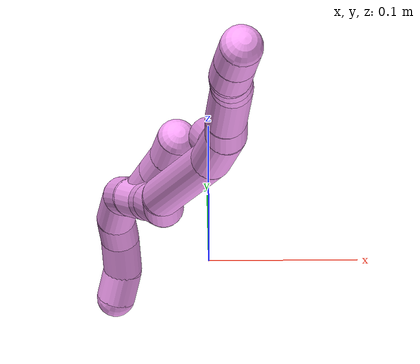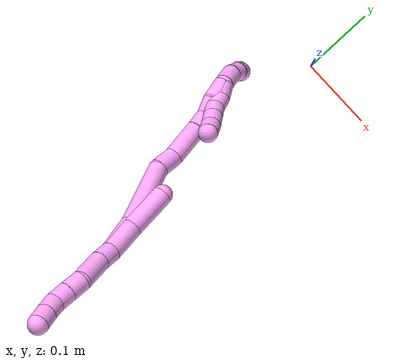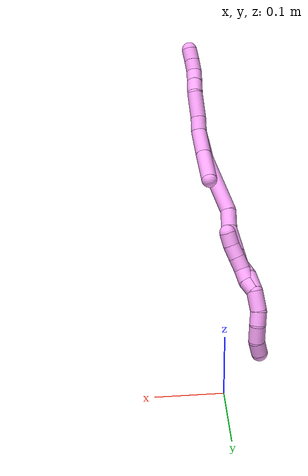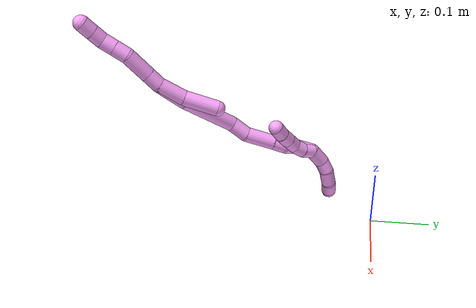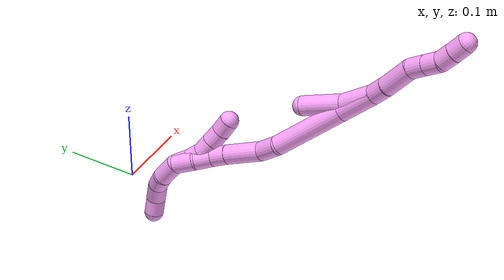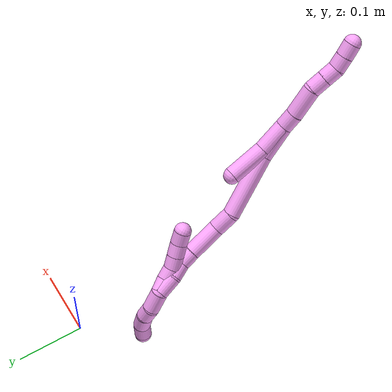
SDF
<sdf version="1.7">
 <world name="default">
  <model name="4">
   <static>0</static>
   <link name="4">
    <collision name="collision-cylinder-e_1_2_8">
     <pose>-0.001698 0.001047 0.011693 -0.089297 -0.143676 0.00643</pose>
     <geometry><cylinder><radius>0.0125</radius><length>0.023724</length></cylinder></geometry>
     <surface>
      <friction><ode><mu>1.16</mu><mu2>1.16</mu2><slip1>0</slip1><slip2>0</slip2></ode></friction>
      <contact><ode><kp>1e+06</kp><kd>1</kd><max_vel>0</max_vel><min_depth>0.001</min_depth></ode></contact>
     </surface>
    </collision>
    <visual name="visual-cylinder-e_1_2_8">
     <pose>-0.001698 0.001047 0.011693 -0.089297 -0.143676 0.00643</pose>
     <geometry><cylinder><radius>0.0125</radius><length>0.023724</length></cylinder></geometry>
     <material><ambient>1 0.65098 0.996078 1</ambient></material>
    </visual>
    <collision name="collision-cylinder-e_2_8_9">
     <pose>-0.004299 0.004067 0.044768 -0.092031 -0.042004 0.001934</pose>
     <geometry><cylinder><radius>0.0125</radius><length>0.042984</length></cylinder></geometry>
     <surface>
      <friction><ode><mu>1.16</mu><mu2>1.16</mu2><slip1>0</slip1><slip2>0</slip2></ode></friction>
      <contact><ode><kp>1e+06</kp><kd>1</kd><max_vel>0</max_vel><min_depth>0.001</min_depth></ode></contact>
     </surface>
    </collision>
    <visual name="visual-cylinder-e_2_8_9">
     <pose>-0.004299 0.004067 0.044768 -0.092031 -0.042004 0.001934</pose>
     <geometry><cylinder><radius>0.0125</radius><length>0.042984</length></cylinder></geometry>
     <material><ambient>1 0.65098 0.996078 1</ambient></material>
    </visual>
    <collision name="collision-cylinder-e_3_9_10">
     <pose>-0.008385 0.004676 0.076805 0.127356 -0.288066 -0.018496</pose>
     <geometry><cylinder><radius>0.0125</radius><length>0.022407</length></cylinder></geometry>
     <surface>
      <friction><ode><mu>1.16</mu><mu2>1.16</mu2><slip1>0</slip1><slip2>0</slip2></ode></friction>
      <contact><ode><kp>1e+06</kp><kd>1</kd><max_vel>0</max_vel><min_depth>0.001</min_depth></ode></contact>
     </surface>
    </collision>
    <visual name="visual-cylinder-e_3_9_10">
     <pose>-0.008385 0.004676 0.076805 0.127356 -0.288066 -0.018496</pose>
     <geometry><cylinder><radius>0.0125</radius><length>0.022407</length></cylinder></geometry>
     <material><ambient>1 0.65098 0.996078 1</ambient></material>
    </visual>
    <collision name="collision-cylinder-e_4_10_11">
     <pose>-0.014545 0.001975 0.097346 0.134415 -0.290054 -0.019661</pose>
     <geometry><cylinder><radius>0.0125</radius><length>0.020822</length></cylinder></geometry>
     <surface>
      <friction><ode><mu>1.16</mu><mu2>1.16</mu2><slip1>0</slip1><slip2>0</slip2></ode></friction>
      <contact><ode><kp>1e+06</kp><kd>1</kd><max_vel>0</max_vel><min_depth>0.001</min_depth></ode></contact>
     </surface>
    </collision>
    <visual name="visual-cylinder-e_4_10_11">
     <pose>-0.014545 0.001975 0.097346 0.134415 -0.290054 -0.019661</pose>
     <geometry><cylinder><radius>0.0125</radius><length>0.020822</length></cylinder></geometry>
     <material><ambient>1 0.65098 0.996078 1</ambient></material>
    </visual>
    <collision name="collision-cylinder-e_5_11_12">
     <pose>-0.017587 0.00105 0.117244 -0.04112 -0.006419 0.000132</pose>
     <geometry><cylinder><radius>0.0125</radius><length>0.020042</length></cylinder></geometry>
     <surface>
      <friction><ode><mu>1.16</mu><mu2>1.16</mu2><slip1>0</slip1><slip2>0</slip2></ode></friction>
      <contact><ode><kp>1e+06</kp><kd>1</kd><max_vel>0</max_vel><min_depth>0.001</min_depth></ode></contact>
     </surface>
    </collision>
    <visual name="visual-cylinder-e_5_11_12">
     <pose>-0.017587 0.00105 0.117244 -0.04112 -0.006419 0.000132</pose>
     <geometry><cylinder><radius>0.0125</radius><length>0.020042</length></cylinder></geometry>
     <material><ambient>1 0.65098 0.996078 1</ambient></material>
    </visual>
    <collision name="collision-cylinder-e_6_12_6">
     <pose>-0.017338 0.001938 0.137251 -0.047574 0.031334 -0.000746</pose>
     <geometry><cylinder><radius>0.0125</radius><length>0.020021</length></cylinder></geometry>
     <surface>
      <friction><ode><mu>1.16</mu><mu2>1.16</mu2><slip1>0</slip1><slip2>0</slip2></ode></friction>
      <contact><ode><kp>1e+06</kp><kd>1</kd><max_vel>0</max_vel><min_depth>0.001</min_depth></ode></contact>
     </surface>
    </collision>
    <visual name="visual-cylinder-e_6_12_6">
     <pose>-0.017338 0.001938 0.137251 -0.047574 0.031334 -0.000746</pose>
     <geometry><cylinder><radius>0.0125</radius><length>0.020021</length></cylinder></geometry>
     <material><ambient>1 0.65098 0.996078 1</ambient></material>
    </visual>
    <collision name="collision-cylinder-e_1_2_13">
     <pose>0.003449 0.003808 -0.021308 -2.96474 0.158018 -1.45789</pose>
     <geometry><cylinder><radius>0.0125</radius><length>0.043836</length></cylinder></geometry>
     <surface>
      <friction><ode><mu>1.16</mu><mu2>1.16</mu2><slip1>0</slip1><slip2>0</slip2></ode></friction>
      <contact><ode><kp>1e+06</kp><kd>1</kd><max_vel>0</max_vel><min_depth>0.001</min_depth></ode></contact>
     </surface>
    </collision>
    <visual name="visual-cylinder-e_1_2_13">
     <pose>0.003449 0.003808 -0.021308 -2.96474 0.158018 -1.45789</pose>
     <geometry><cylinder><radius>0.0125</radius><length>0.043836</length></cylinder></geometry>
     <material><ambient>1 0.65098 0.996078 1</ambient></material>
    </visual>
    <collision name="collision-cylinder-e_2_13_5">
     <pose>0.014555 0.017877 -0.067609 -2.75205 0.276145 -1.22734</pose>
     <geometry><cylinder><radius>0.0125</radius><length>0.056164</length></cylinder></geometry>
     <surface>
      <friction><ode><mu>1.16</mu><mu2>1.16</mu2><slip1>0</slip1><slip2>0</slip2></ode></friction>
      <contact><ode><kp>1e+06</kp><kd>1</kd><max_vel>0</max_vel><min_depth>0.001</min_depth></ode></contact>
     </surface>
    </collision>
    <visual name="visual-cylinder-e_2_13_5">
     <pose>0.014555 0.017877 -0.067609 -2.75205 0.276145 -1.22734</pose>
     <geometry><cylinder><radius>0.0125</radius><length>0.056164</length></cylinder></geometry>
     <material><ambient>1 0.65098 0.996078 1</ambient></material>
    </visual>
    <collision name="collision-cylinder-e_1_2_14">
     <pose>0.000791 0.00196 -0.025116 -3.06372 0.031371 -0.76565</pose>
     <geometry><cylinder><radius>0.0125</radius><length>0.05041</length></cylinder></geometry>
     <surface>
      <friction><ode><mu>1.16</mu><mu2>1.16</mu2><slip1>0</slip1><slip2>0</slip2></ode></friction>
      <contact><ode><kp>1e+06</kp><kd>1</kd><max_vel>0</max_vel><min_depth>0.001</min_depth></ode></contact>
     </surface>
    </collision>
    <visual name="visual-cylinder-e_1_2_14">
     <pose>0.000791 0.00196 -0.025116 -3.06372 0.031371 -0.76565</pose>
     <geometry><cylinder><radius>0.0125</radius><length>0.05041</length></cylinder></geometry>
     <material><ambient>1 0.65098 0.996078 1</ambient></material>
    </visual>
    <collision name="collision-cylinder-e_2_14_15">
     <pose>-0.002221 0.012434 -0.096997 -2.96149 -0.079825 0.832777</pose>
     <geometry><cylinder><radius>0.0125</radius><length>0.095371</length></cylinder></geometry>
     <surface>
      <friction><ode><mu>1.16</mu><mu2>1.16</mu2><slip1>0</slip1><slip2>0</slip2></ode></friction>
      <contact><ode><kp>1e+06</kp><kd>1</kd><max_vel>0</max_vel><min_depth>0.001</min_depth></ode></contact>
     </surface>
    </collision>
    <visual name="visual-cylinder-e_2_14_15">
     <pose>-0.002221 0.012434 -0.096997 -2.96149 -0.079825 0.832777</pose>
     <geometry><cylinder><radius>0.0125</radius><length>0.095371</length></cylinder></geometry>
     <material><ambient>1 0.65098 0.996078 1</ambient></material>
    </visual>
    <collision name="collision-cylinder-e_3_15_16">
     <pose>-0.002489 0.021437 -0.158601 -3.10875 0.233729 -2.86366</pose>
     <geometry><cylinder><radius>0.0125</radius><length>0.030525</length></cylinder></geometry>
     <surface>
      <friction><ode><mu>1.16</mu><mu2>1.16</mu2><slip1>0</slip1><slip2>0</slip2></ode></friction>
      <contact><ode><kp>1e+06</kp><kd>1</kd><max_vel>0</max_vel><min_depth>0.001</min_depth></ode></contact>
     </surface>
    </collision>
    <visual name="visual-cylinder-e_3_15_16">
     <pose>-0.002489 0.021437 -0.158601 -3.10875 0.233729 -2.86366</pose>
     <geometry><cylinder><radius>0.0125</radius><length>0.030525</length></cylinder></geometry>
     <material><ambient>1 0.65098 0.996078 1</ambient></material>
    </visual>
    <collision name="collision-cylinder-e_4_16_17">
     <pose>0.006106 0.030911 -0.195718 -2.75815 0.207587 -0.985088</pose>
     <geometry><cylinder><radius>0.0125</radius><length>0.049098</length></cylinder></geometry>
     <surface>
      <friction><ode><mu>1.16</mu><mu2>1.16</mu2><slip1>0</slip1><slip2>0</slip2></ode></friction>
      <contact><ode><kp>1e+06</kp><kd>1</kd><max_vel>0</max_vel><min_depth>0.001</min_depth></ode></contact>
     </surface>
    </collision>
    <visual name="visual-cylinder-e_4_16_17">
     <pose>0.006106 0.030911 -0.195718 -2.75815 0.207587 -0.985088</pose>
     <geometry><cylinder><radius>0.0125</radius><length>0.049098</length></cylinder></geometry>
     <material><ambient>1 0.65098 0.996078 1</ambient></material>
    </visual>
    <collision name="collision-cylinder-e_5_17_18">
     <pose>0.013099 0.043536 -0.228325 -2.80292 0.174814 -0.947255</pose>
     <geometry><cylinder><radius>0.0125</radius><length>0.022241</length></cylinder></geometry>
     <surface>
      <friction><ode><mu>1.16</mu><mu2>1.16</mu2><slip1>0</slip1><slip2>0</slip2></ode></friction>
      <contact><ode><kp>1e+06</kp><kd>1</kd><max_vel>0</max_vel><min_depth>0.001</min_depth></ode></contact>
     </surface>
    </collision>
    <visual name="visual-cylinder-e_5_17_18">
     <pose>0.013099 0.043536 -0.228325 -2.80292 0.174814 -0.947255</pose>
     <geometry><cylinder><radius>0.0125</radius><length>0.022241</length></cylinder></geometry>
     <material><ambient>1 0.65098 0.996078 1</ambient></material>
    </visual>
    <collision name="collision-cylinder-e_6_18_19">
     <pose>0.014482 0.053188 -0.248637 -2.59944 -0.047265 0.169689</pose>
     <geometry><cylinder><radius>0.0125</radius><length>0.023336</length></cylinder></geometry>
     <surface>
      <friction><ode><mu>1.16</mu><mu2>1.16</mu2><slip1>0</slip1><slip2>0</slip2></ode></friction>
      <contact><ode><kp>1e+06</kp><kd>1</kd><max_vel>0</max_vel><min_depth>0.001</min_depth></ode></contact>
     </surface>
    </collision>
    <visual name="visual-cylinder-e_6_18_19">
     <pose>0.014482 0.053188 -0.248637 -2.59944 -0.047265 0.169689</pose>
     <geometry><cylinder><radius>0.0125</radius><length>0.023336</length></cylinder></geometry>
     <material><ambient>1 0.65098 0.996078 1</ambient></material>
    </visual>
    <collision name="collision-cylinder-e_7_19_1">
     <pose>0.015682 0.064519 -0.272007 -2.76355 0.121022 -0.613397</pose>
     <geometry><cylinder><radius>0.0125</radius><length>0.02902</length></cylinder></geometry>
     <surface>
      <friction><ode><mu>1.16</mu><mu2>1.16</mu2><slip1>0</slip1><slip2>0</slip2></ode></friction>
      <contact><ode><kp>1e+06</kp><kd>1</kd><max_vel>0</max_vel><min_depth>0.001</min_depth></ode></contact>
     </surface>
    </collision>
    <visual name="visual-cylinder-e_7_19_1">
     <pose>0.015682 0.064519 -0.272007 -2.76355 0.121022 -0.613397</pose>
     <geometry><cylinder><radius>0.0125</radius><length>0.02902</length></cylinder></geometry>
     <material><ambient>1 0.65098 0.996078 1</ambient></material>
    </visual>
    <collision name="collision-cylinder-e_1_1_20">
     <pose>0.016539 0.067956 -0.300688 3.01934 -0.058014 -0.885389</pose>
     <geometry><cylinder><radius>0.0125</radius><length>0.030869</length></cylinder></geometry>
     <surface>
      <friction><ode><mu>1.16</mu><mu2>1.16</mu2><slip1>0</slip1><slip2>0</slip2></ode></friction>
      <contact><ode><kp>1e+06</kp><kd>1</kd><max_vel>0</max_vel><min_depth>0.001</min_depth></ode></contact>
     </surface>
    </collision>
    <visual name="visual-cylinder-e_1_1_20">
     <pose>0.016539 0.067956 -0.300688 3.01934 -0.058014 -0.885389</pose>
     <geometry><cylinder><radius>0.0125</radius><length>0.030869</length></cylinder></geometry>
     <material><ambient>1 0.65098 0.996078 1</ambient></material>
    </visual>
    <collision name="collision-cylinder-e_2_20_21">
     <pose>0.01662 0.062188 -0.325687 2.76046 0.093025 0.473523</pose>
     <geometry><cylinder><radius>0.0125</radius><length>0.021003</length></cylinder></geometry>
     <surface>
      <friction><ode><mu>1.16</mu><mu2>1.16</mu2><slip1>0</slip1><slip2>0</slip2></ode></friction>
      <contact><ode><kp>1e+06</kp><kd>1</kd><max_vel>0</max_vel><min_depth>0.001</min_depth></ode></contact>
     </surface>
    </collision>
    <visual name="visual-cylinder-e_2_20_21">
     <pose>0.01662 0.062188 -0.325687 2.76046 0.093025 0.473523</pose>
     <geometry><cylinder><radius>0.0125</radius><length>0.021003</length></cylinder></geometry>
     <material><ambient>1 0.65098 0.996078 1</ambient></material>
    </visual>
    <collision name="collision-cylinder-e_3_21_22">
     <pose>0.016471 0.051131 -0.346262 2.55862 -0.086183 -0.285469</pose>
     <geometry><cylinder><radius>0.0125</radius><length>0.026135</length></cylinder></geometry>
     <surface>
      <friction><ode><mu>1.16</mu><mu2>1.16</mu2><slip1>0</slip1><slip2>0</slip2></ode></friction>
      <contact><ode><kp>1e+06</kp><kd>1</kd><max_vel>0</max_vel><min_depth>0.001</min_depth></ode></contact>
     </surface>
    </collision>
    <visual name="visual-cylinder-e_3_21_22">
     <pose>0.016471 0.051131 -0.346262 2.55862 -0.086183 -0.285469</pose>
     <geometry><cylinder><radius>0.0125</radius><length>0.026135</length></cylinder></geometry>
     <material><ambient>1 0.65098 0.996078 1</ambient></material>
    </visual>
    <collision name="collision-cylinder-e_4_22_4">
     <pose>0.011018 0.038483 -0.365624 2.56854 -0.404539 -1.21611</pose>
     <geometry><cylinder><radius>0.0125</radius><length>0.021993</length></cylinder></geometry>
     <surface>
      <friction><ode><mu>1.16</mu><mu2>1.16</mu2><slip1>0</slip1><slip2>0</slip2></ode></friction>
      <contact><ode><kp>1e+06</kp><kd>1</kd><max_vel>0</max_vel><min_depth>0.001</min_depth></ode></contact>
     </surface>
    </collision>
    <visual name="visual-cylinder-e_4_22_4">
     <pose>0.011018 0.038483 -0.365624 2.56854 -0.404539 -1.21611</pose>
     <geometry><cylinder><radius>0.0125</radius><length>0.021993</length></cylinder></geometry>
     <material><ambient>1 0.65098 0.996078 1</ambient></material>
    </visual>
    <collision name="collision-cylinder-e_1_1_23">
     <pose>0.019137 0.065311 -0.27664 0.476985 0.171163 0.041709</pose>
     <geometry><cylinder><radius>0.0125</radius><length>0.02</length></cylinder></geometry>
     <surface>
      <friction><ode><mu>1.16</mu><mu2>1.16</mu2><slip1>0</slip1><slip2>0</slip2></ode></friction>
      <contact><ode><kp>1e+06</kp><kd>1</kd><max_vel>0</max_vel><min_depth>0.001</min_depth></ode></contact>
     </surface>
    </collision>
    <visual name="visual-cylinder-e_1_1_23">
     <pose>0.019137 0.065311 -0.27664 0.476985 0.171163 0.041709</pose>
     <geometry><cylinder><radius>0.0125</radius><length>0.02</length></cylinder></geometry>
     <material><ambient>1 0.65098 0.996078 1</ambient></material>
    </visual>
    <collision name="collision-cylinder-e_2_23_24">
     <pose>0.021338 0.059294 -0.258011 0.15011 0.049715 0.003739</pose>
     <geometry><cylinder><radius>0.0125</radius><length>0.02</length></cylinder></geometry>
     <surface>
      <friction><ode><mu>1.16</mu><mu2>1.16</mu2><slip1>0</slip1><slip2>0</slip2></ode></friction>
      <contact><ode><kp>1e+06</kp><kd>1</kd><max_vel>0</max_vel><min_depth>0.001</min_depth></ode></contact>
     </surface>
    </collision>
    <visual name="visual-cylinder-e_2_23_24">
     <pose>0.021338 0.059294 -0.258011 0.15011 0.049715 0.003739</pose>
     <geometry><cylinder><radius>0.0125</radius><length>0.02</length></cylinder></geometry>
     <material><ambient>1 0.65098 0.996078 1</ambient></material>
    </visual>
    <collision name="collision-cylinder-e_3_24_25">
     <pose>0.024543 0.058141 -0.238515 -0.035384 0.27424 -0.004883</pose>
     <geometry><cylinder><radius>0.0125</radius><length>0.02</length></cylinder></geometry>
     <surface>
      <friction><ode><mu>1.16</mu><mu2>1.16</mu2><slip1>0</slip1><slip2>0</slip2></ode></friction>
      <contact><ode><kp>1e+06</kp><kd>1</kd><max_vel>0</max_vel><min_depth>0.001</min_depth></ode></contact>
     </surface>
    </collision>
    <visual name="visual-cylinder-e_3_24_25">
     <pose>0.024543 0.058141 -0.238515 -0.035384 0.27424 -0.004883</pose>
     <geometry><cylinder><radius>0.0125</radius><length>0.02</length></cylinder></geometry>
     <material><ambient>1 0.65098 0.996078 1</ambient></material>
    </visual>
    <collision name="collision-cylinder-e_4_25_26">
     <pose>0.029962 0.058819 -0.219275 -0.035105 0.274487 -0.004849</pose>
     <geometry><cylinder><radius>0.0125</radius><length>0.02</length></cylinder></geometry>
     <surface>
      <friction><ode><mu>1.16</mu><mu2>1.16</mu2><slip1>0</slip1><slip2>0</slip2></ode></friction>
      <contact><ode><kp>1e+06</kp><kd>1</kd><max_vel>0</max_vel><min_depth>0.001</min_depth></ode></contact>
     </surface>
    </collision>
    <visual name="visual-cylinder-e_4_25_26">
     <pose>0.029962 0.058819 -0.219275 -0.035105 0.274487 -0.004849</pose>
     <geometry><cylinder><radius>0.0125</radius><length>0.02</length></cylinder></geometry>
     <material><ambient>1 0.65098 0.996078 1</ambient></material>
    </visual>
    <collision name="collision-cylinder-e_5_26_3">
     <pose>0.034744 0.060816 -0.200014 -0.170403 0.208725 -0.017891</pose>
     <geometry><cylinder><radius>0.0125</radius><length>0.02</length></cylinder></geometry>
     <surface>
      <friction><ode><mu>1.16</mu><mu2>1.16</mu2><slip1>0</slip1><slip2>0</slip2></ode></friction>
      <contact><ode><kp>1e+06</kp><kd>1</kd><max_vel>0</max_vel><min_depth>0.001</min_depth></ode></contact>
     </surface>
    </collision>
    <visual name="visual-cylinder-e_5_26_3">
     <pose>0.034744 0.060816 -0.200014 -0.170403 0.208725 -0.017891</pose>
     <geometry><cylinder><radius>0.0125</radius><length>0.02</length></cylinder></geometry>
     <material><ambient>1 0.65098 0.996078 1</ambient></material>
    </visual>
    <collision name="collision-sphere-3">
     <pose>0.036816 0.062475 -0.190373 0 -0 0</pose>
     <geometry><sphere><radius>0.0125</radius></sphere></geometry>
     <surface>
      <friction><ode><mu>1.16</mu><mu2>1.16</mu2><slip1>0</slip1><slip2>0</slip2></ode></friction>
      <contact><ode><kp>1e+06</kp><kd>1</kd><max_vel>0</max_vel><min_depth>0.001</min_depth></ode></contact>
     </surface>
    </collision>
    <visual name="visual-sphere-3">
     <pose>0.036816 0.062475 -0.190373 0 -0 0</pose>
     <geometry><sphere><radius>0.0125</radius></sphere></geometry>
     <material><ambient>1 0.65098 0.996078 1</ambient></material>
    </visual>
    <collision name="collision-sphere-26">
     <pose>0.032672 0.059157 -0.209655 0 -0 0</pose>
     <geometry><sphere><radius>0.0125</radius></sphere></geometry>
     <surface>
      <friction><ode><mu>1.16</mu><mu2>1.16</mu2><slip1>0</slip1><slip2>0</slip2></ode></friction>
      <contact><ode><kp>1e+06</kp><kd>1</kd><max_vel>0</max_vel><min_depth>0.001</min_depth></ode></contact>
     </surface>
    </collision>
    <visual name="visual-sphere-26">
     <pose>0.032672 0.059157 -0.209655 0 -0 0</pose>
     <geometry><sphere><radius>0.0125</radius></sphere></geometry>
     <material><ambient>1 0.65098 0.996078 1</ambient></material>
    </visual>
    <collision name="collision-sphere-25">
     <pose>0.027251 0.058481 -0.228895 0 -0 0</pose>
     <geometry><sphere><radius>0.0125</radius></sphere></geometry>
     <surface>
      <friction><ode><mu>1.16</mu><mu2>1.16</mu2><slip1>0</slip1><slip2>0</slip2></ode></friction>
      <contact><ode><kp>1e+06</kp><kd>1</kd><max_vel>0</max_vel><min_depth>0.001</min_depth></ode></contact>
     </surface>
    </collision>
    <visual name="visual-sphere-25">
     <pose>0.027251 0.058481 -0.228895 0 -0 0</pose>
     <geometry><sphere><radius>0.0125</radius></sphere></geometry>
     <material><ambient>1 0.65098 0.996078 1</ambient></material>
    </visual>
    <collision name="collision-sphere-24">
     <pose>0.021835 0.0578 -0.248135 0 -0 0</pose>
     <geometry><sphere><radius>0.0125</radius></sphere></geometry>
     <surface>
      <friction><ode><mu>1.16</mu><mu2>1.16</mu2><slip1>0</slip1><slip2>0</slip2></ode></friction>
      <contact><ode><kp>1e+06</kp><kd>1</kd><max_vel>0</max_vel><min_depth>0.001</min_depth></ode></contact>
     </surface>
    </collision>
    <visual name="visual-sphere-24">
     <pose>0.021835 0.0578 -0.248135 0 -0 0</pose>
     <geometry><sphere><radius>0.0125</radius></sphere></geometry>
     <material><ambient>1 0.65098 0.996078 1</ambient></material>
    </visual>
    <collision name="collision-sphere-23">
     <pose>0.020841 0.060787 -0.267886 0 -0 0</pose>
     <geometry><sphere><radius>0.0125</radius></sphere></geometry>
     <surface>
      <friction><ode><mu>1.16</mu><mu2>1.16</mu2><slip1>0</slip1><slip2>0</slip2></ode></friction>
      <contact><ode><kp>1e+06</kp><kd>1</kd><max_vel>0</max_vel><min_depth>0.001</min_depth></ode></contact>
     </surface>
    </collision>
    <visual name="visual-sphere-23">
     <pose>0.020841 0.060787 -0.267886 0 -0 0</pose>
     <geometry><sphere><radius>0.0125</radius></sphere></geometry>
     <material><ambient>1 0.65098 0.996078 1</ambient></material>
    </visual>
    <collision name="collision-sphere-4">
     <pose>0.006689 0.033002 -0.374118 0 -0 0</pose>
     <geometry><sphere><radius>0.0125</radius></sphere></geometry>
     <surface>
      <friction><ode><mu>1.16</mu><mu2>1.16</mu2><slip1>0</slip1><slip2>0</slip2></ode></friction>
      <contact><ode><kp>1e+06</kp><kd>1</kd><max_vel>0</max_vel><min_depth>0.001</min_depth></ode></contact>
     </surface>
    </collision>
    <visual name="visual-sphere-4">
     <pose>0.006689 0.033002 -0.374118 0 -0 0</pose>
     <geometry><sphere><radius>0.0125</radius></sphere></geometry>
     <material><ambient>1 0.65098 0.996078 1</ambient></material>
    </visual>
    <collision name="collision-sphere-22">
     <pose>0.015346 0.043964 -0.35713 0 -0 0</pose>
     <geometry><sphere><radius>0.0125</radius></sphere></geometry>
     <surface>
      <friction><ode><mu>1.16</mu><mu2>1.16</mu2><slip1>0</slip1><slip2>0</slip2></ode></friction>
      <contact><ode><kp>1e+06</kp><kd>1</kd><max_vel>0</max_vel><min_depth>0.001</min_depth></ode></contact>
     </surface>
    </collision>
    <visual name="visual-sphere-22">
     <pose>0.015346 0.043964 -0.35713 0 -0 0</pose>
     <geometry><sphere><radius>0.0125</radius></sphere></geometry>
     <material><ambient>1 0.65098 0.996078 1</ambient></material>
    </visual>
    <collision name="collision-sphere-21">
     <pose>0.017595 0.058298 -0.335393 0 -0 0</pose>
     <geometry><sphere><radius>0.0125</radius></sphere></geometry>
     <surface>
      <friction><ode><mu>1.16</mu><mu2>1.16</mu2><slip1>0</slip1><slip2>0</slip2></ode></friction>
      <contact><ode><kp>1e+06</kp><kd>1</kd><max_vel>0</max_vel><min_depth>0.001</min_depth></ode></contact>
     </surface>
    </collision>
    <visual name="visual-sphere-21">
     <pose>0.017595 0.058298 -0.335393 0 -0 0</pose>
     <geometry><sphere><radius>0.0125</radius></sphere></geometry>
     <material><ambient>1 0.65098 0.996078 1</ambient></material>
    </visual>
    <collision name="collision-sphere-20">
     <pose>0.015644 0.066077 -0.315981 0 -0 0</pose>
     <geometry><sphere><radius>0.0125</radius></sphere></geometry>
     <surface>
      <friction><ode><mu>1.16</mu><mu2>1.16</mu2><slip1>0</slip1><slip2>0</slip2></ode></friction>
      <contact><ode><kp>1e+06</kp><kd>1</kd><max_vel>0</max_vel><min_depth>0.001</min_depth></ode></contact>
     </surface>
    </collision>
    <visual name="visual-sphere-20">
     <pose>0.015644 0.066077 -0.315981 0 -0 0</pose>
     <geometry><sphere><radius>0.0125</radius></sphere></geometry>
     <material><ambient>1 0.65098 0.996078 1</ambient></material>
    </visual>
    <collision name="collision-sphere-12">
     <pose>-0.017651 0.001462 0.127257 0 -0 0</pose>
     <geometry><sphere><radius>0.0125</radius></sphere></geometry>
     <surface>
      <friction><ode><mu>1.16</mu><mu2>1.16</mu2><slip1>0</slip1><slip2>0</slip2></ode></friction>
      <contact><ode><kp>1e+06</kp><kd>1</kd><max_vel>0</max_vel><min_depth>0.001</min_depth></ode></contact>
     </surface>
    </collision>
    <visual name="visual-sphere-12">
     <pose>-0.017651 0.001462 0.127257 0 -0 0</pose>
     <geometry><sphere><radius>0.0125</radius></sphere></geometry>
     <material><ambient>1 0.65098 0.996078 1</ambient></material>
    </visual>
    <collision name="collision-sphere-11">
     <pose>-0.017523 0.000638 0.107232 0 -0 0</pose>
     <geometry><sphere><radius>0.0125</radius></sphere></geometry>
     <surface>
      <friction><ode><mu>1.16</mu><mu2>1.16</mu2><slip1>0</slip1><slip2>0</slip2></ode></friction>
      <contact><ode><kp>1e+06</kp><kd>1</kd><max_vel>0</max_vel><min_depth>0.001</min_depth></ode></contact>
     </surface>
    </collision>
    <visual name="visual-sphere-11">
     <pose>-0.017523 0.000638 0.107232 0 -0 0</pose>
     <geometry><sphere><radius>0.0125</radius></sphere></geometry>
     <material><ambient>1 0.65098 0.996078 1</ambient></material>
    </visual>
    <collision name="collision-sphere-10">
     <pose>-0.011568 0.003312 0.08746 0 -0 0</pose>
     <geometry><sphere><radius>0.0125</radius></sphere></geometry>
     <surface>
      <friction><ode><mu>1.16</mu><mu2>1.16</mu2><slip1>0</slip1><slip2>0</slip2></ode></friction>
      <contact><ode><kp>1e+06</kp><kd>1</kd><max_vel>0</max_vel><min_depth>0.001</min_depth></ode></contact>
     </surface>
    </collision>
    <visual name="visual-sphere-10">
     <pose>-0.011568 0.003312 0.08746 0 -0 0</pose>
     <geometry><sphere><radius>0.0125</radius></sphere></geometry>
     <material><ambient>1 0.65098 0.996078 1</ambient></material>
    </visual>
    <collision name="collision-sphere-9">
     <pose>-0.005202 0.006041 0.06615 0 -0 0</pose>
     <geometry><sphere><radius>0.0125</radius></sphere></geometry>
     <surface>
      <friction><ode><mu>1.16</mu><mu2>1.16</mu2><slip1>0</slip1><slip2>0</slip2></ode></friction>
      <contact><ode><kp>1e+06</kp><kd>1</kd><max_vel>0</max_vel><min_depth>0.001</min_depth></ode></contact>
     </surface>
    </collision>
    <visual name="visual-sphere-9">
     <pose>-0.005202 0.006041 0.06615 0 -0 0</pose>
     <geometry><sphere><radius>0.0125</radius></sphere></geometry>
     <material><ambient>1 0.65098 0.996078 1</ambient></material>
    </visual>
    <collision name="collision-sphere-2">
     <geometry><sphere><radius>0.0125</radius></sphere></geometry>
     <surface>
      <friction><ode><mu>1.16</mu><mu2>1.16</mu2><slip1>0</slip1><slip2>0</slip2></ode></friction>
      <contact><ode><kp>1e+06</kp><kd>1</kd><max_vel>0</max_vel><min_depth>0.001</min_depth></ode></contact>
     </surface>
    </collision>
    <visual name="visual-sphere-2">
     <geometry><sphere><radius>0.0125</radius></sphere></geometry>
     <material><ambient>1 0.65098 0.996078 1</ambient></material>
    </visual>
    <collision name="collision-sphere-19">
     <pose>0.013931 0.059202 -0.25862 0 -0 0</pose>
     <geometry><sphere><radius>0.0125</radius></sphere></geometry>
     <surface>
      <friction><ode><mu>1.16</mu><mu2>1.16</mu2><slip1>0</slip1><slip2>0</slip2></ode></friction>
      <contact><ode><kp>1e+06</kp><kd>1</kd><max_vel>0</max_vel><min_depth>0.001</min_depth></ode></contact>
     </surface>
    </collision>
    <visual name="visual-sphere-19">
     <pose>0.013931 0.059202 -0.25862 0 -0 0</pose>
     <geometry><sphere><radius>0.0125</radius></sphere></geometry>
     <material><ambient>1 0.65098 0.996078 1</ambient></material>
    </visual>
    <collision name="collision-sphere-8">
     <pose>-0.003397 0.002094 0.023386 0 -0 0</pose>
     <geometry><sphere><radius>0.0125</radius></sphere></geometry>
     <surface>
      <friction><ode><mu>1.16</mu><mu2>1.16</mu2><slip1>0</slip1><slip2>0</slip2></ode></friction>
      <contact><ode><kp>1e+06</kp><kd>1</kd><max_vel>0</max_vel><min_depth>0.001</min_depth></ode></contact>
     </surface>
    </collision>
    <visual name="visual-sphere-8">
     <pose>-0.003397 0.002094 0.023386 0 -0 0</pose>
     <geometry><sphere><radius>0.0125</radius></sphere></geometry>
     <material><ambient>1 0.65098 0.996078 1</ambient></material>
    </visual>
    <collision name="collision-sphere-6">
     <pose>-0.017024 0.002414 0.147246 0 -0 0</pose>
     <geometry><sphere><radius>0.0125</radius></sphere></geometry>
     <surface>
      <friction><ode><mu>1.16</mu><mu2>1.16</mu2><slip1>0</slip1><slip2>0</slip2></ode></friction>
      <contact><ode><kp>1e+06</kp><kd>1</kd><max_vel>0</max_vel><min_depth>0.001</min_depth></ode></contact>
     </surface>
    </collision>
    <visual name="visual-sphere-6">
     <pose>-0.017024 0.002414 0.147246 0 -0 0</pose>
     <geometry><sphere><radius>0.0125</radius></sphere></geometry>
     <material><ambient>1 0.65098 0.996078 1</ambient></material>
    </visual>
    <collision name="collision-sphere-13">
     <pose>0.006898 0.007616 -0.042615 0 -0 0</pose>
     <geometry><sphere><radius>0.0125</radius></sphere></geometry>
     <surface>
      <friction><ode><mu>1.16</mu><mu2>1.16</mu2><slip1>0</slip1><slip2>0</slip2></ode></friction>
      <contact><ode><kp>1e+06</kp><kd>1</kd><max_vel>0</max_vel><min_depth>0.001</min_depth></ode></contact>
     </surface>
    </collision>
    <visual name="visual-sphere-13">
     <pose>0.006898 0.007616 -0.042615 0 -0 0</pose>
     <geometry><sphere><radius>0.0125</radius></sphere></geometry>
     <material><ambient>1 0.65098 0.996078 1</ambient></material>
    </visual>
    <collision name="collision-sphere-5">
     <pose>0.022211 0.028137 -0.092603 0 -0 0</pose>
     <geometry><sphere><radius>0.0125</radius></sphere></geometry>
     <surface>
      <friction><ode><mu>1.16</mu><mu2>1.16</mu2><slip1>0</slip1><slip2>0</slip2></ode></friction>
      <contact><ode><kp>1e+06</kp><kd>1</kd><max_vel>0</max_vel><min_depth>0.001</min_depth></ode></contact>
     </surface>
    </collision>
    <visual name="visual-sphere-5">
     <pose>0.022211 0.028137 -0.092603 0 -0 0</pose>
     <geometry><sphere><radius>0.0125</radius></sphere></geometry>
     <material><ambient>1 0.65098 0.996078 1</ambient></material>
    </visual>
    <collision name="collision-sphere-14">
     <pose>0.001581 0.00392 -0.050232 0 -0 0</pose>
     <geometry><sphere><radius>0.0125</radius></sphere></geometry>
     <surface>
      <friction><ode><mu>1.16</mu><mu2>1.16</mu2><slip1>0</slip1><slip2>0</slip2></ode></friction>
      <contact><ode><kp>1e+06</kp><kd>1</kd><max_vel>0</max_vel><min_depth>0.001</min_depth></ode></contact>
     </surface>
    </collision>
    <visual name="visual-sphere-14">
     <pose>0.001581 0.00392 -0.050232 0 -0 0</pose>
     <geometry><sphere><radius>0.0125</radius></sphere></geometry>
     <material><ambient>1 0.65098 0.996078 1</ambient></material>
    </visual>
    <collision name="collision-sphere-15">
     <pose>-0.006024 0.020949 -0.143762 0 -0 0</pose>
     <geometry><sphere><radius>0.0125</radius></sphere></geometry>
     <surface>
      <friction><ode><mu>1.16</mu><mu2>1.16</mu2><slip1>0</slip1><slip2>0</slip2></ode></friction>
      <contact><ode><kp>1e+06</kp><kd>1</kd><max_vel>0</max_vel><min_depth>0.001</min_depth></ode></contact>
     </surface>
    </collision>
    <visual name="visual-sphere-15">
     <pose>-0.006024 0.020949 -0.143762 0 -0 0</pose>
     <geometry><sphere><radius>0.0125</radius></sphere></geometry>
     <material><ambient>1 0.65098 0.996078 1</ambient></material>
    </visual>
    <collision name="collision-sphere-16">
     <pose>0.001046 0.021924 -0.173441 0 -0 0</pose>
     <geometry><sphere><radius>0.0125</radius></sphere></geometry>
     <surface>
      <friction><ode><mu>1.16</mu><mu2>1.16</mu2><slip1>0</slip1><slip2>0</slip2></ode></friction>
      <contact><ode><kp>1e+06</kp><kd>1</kd><max_vel>0</max_vel><min_depth>0.001</min_depth></ode></contact>
     </surface>
    </collision>
    <visual name="visual-sphere-16">
     <pose>0.001046 0.021924 -0.173441 0 -0 0</pose>
     <geometry><sphere><radius>0.0125</radius></sphere></geometry>
     <material><ambient>1 0.65098 0.996078 1</ambient></material>
    </visual>
    <collision name="collision-sphere-17">
     <pose>0.011165 0.039898 -0.217996 0 -0 0</pose>
     <geometry><sphere><radius>0.0125</radius></sphere></geometry>
     <surface>
      <friction><ode><mu>1.16</mu><mu2>1.16</mu2><slip1>0</slip1><slip2>0</slip2></ode></friction>
      <contact><ode><kp>1e+06</kp><kd>1</kd><max_vel>0</max_vel><min_depth>0.001</min_depth></ode></contact>
     </surface>
    </collision>
    <visual name="visual-sphere-17">
     <pose>0.011165 0.039898 -0.217996 0 -0 0</pose>
     <geometry><sphere><radius>0.0125</radius></sphere></geometry>
     <material><ambient>1 0.65098 0.996078 1</ambient></material>
    </visual>
    <collision name="collision-sphere-18">
     <pose>0.015033 0.047175 -0.238653 0 -0 0</pose>
     <geometry><sphere><radius>0.0125</radius></sphere></geometry>
     <surface>
      <friction><ode><mu>1.16</mu><mu2>1.16</mu2><slip1>0</slip1><slip2>0</slip2></ode></friction>
      <contact><ode><kp>1e+06</kp><kd>1</kd><max_vel>0</max_vel><min_depth>0.001</min_depth></ode></contact>
     </surface>
    </collision>
    <visual name="visual-sphere-18">
     <pose>0.015033 0.047175 -0.238653 0 -0 0</pose>
     <geometry><sphere><radius>0.0125</radius></sphere></geometry>
     <material><ambient>1 0.65098 0.996078 1</ambient></material>
    </visual>
    <collision name="collision-sphere-1">
     <pose>0.017434 0.069835 -0.285394 0 -0 0</pose>
     <geometry><sphere><radius>0.0125</radius></sphere></geometry>
     <surface>
      <friction><ode><mu>1.16</mu><mu2>1.16</mu2><slip1>0</slip1><slip2>0</slip2></ode></friction>
      <contact><ode><kp>1e+06</kp><kd>1</kd><max_vel>0</max_vel><min_depth>0.001</min_depth></ode></contact>
     </surface>
    </collision>
    <visual name="visual-sphere-1">
     <pose>0.017434 0.069835 -0.285394 0 -0 0</pose>
     <geometry><sphere><radius>0.0125</radius></sphere></geometry>
     <material><ambient>1 0.65098 0.996078 1</ambient></material>
    </visual>
    <inertial>
     <pose>0.006422 0.027665 -0.125983 0 -0 0</pose>
     <mass>0.75</mass>
     <inertia>
      <ixx>0.000113</ixx>
      <ixy>0</ixy>
      <ixz>0</ixz>
      <iyy>-4.2e-05</iyy>
      <iyz>0</iyz>
      <izz>-4.7e-05</izz>
     </inertia>
    </inertial>
   </link>
   <pose>0.007722 -0.348841 0.259583 0.730626 -0.236268 0.48623</pose>
  </model>
 </world>
</sdf>
